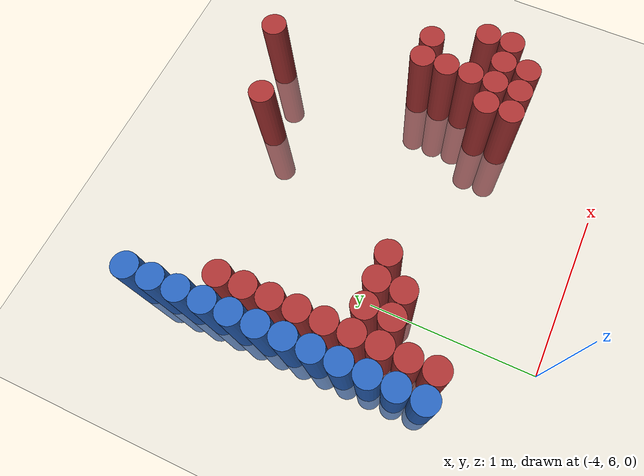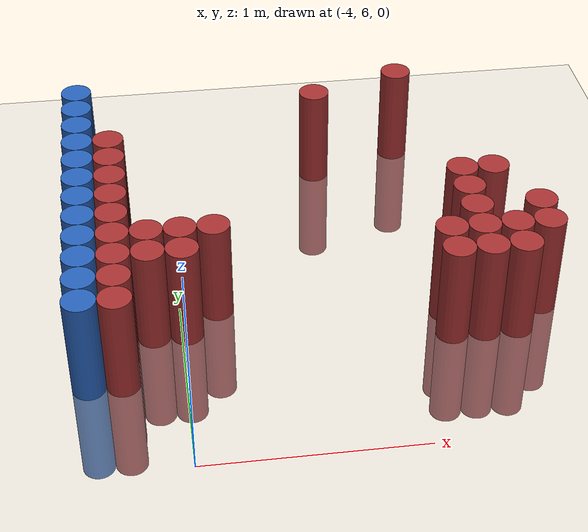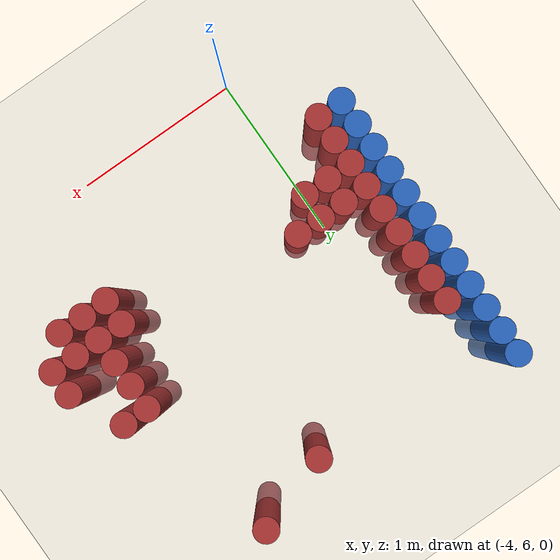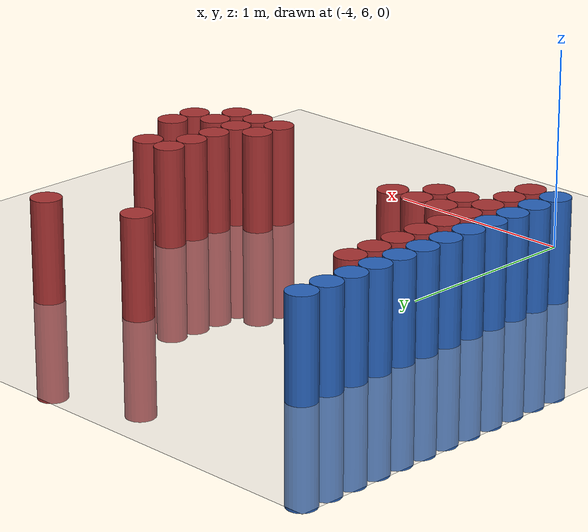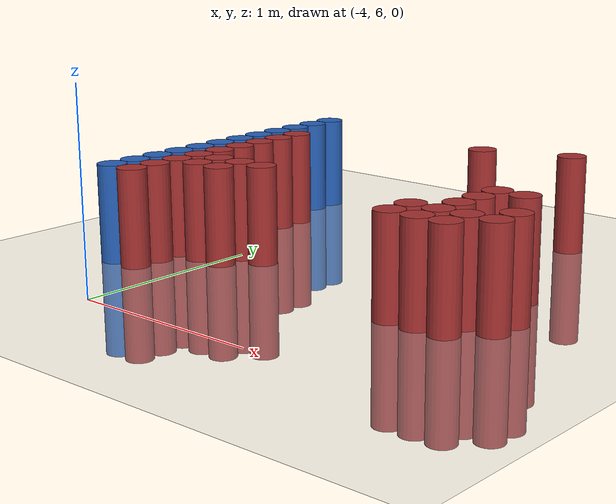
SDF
<sdf version="1.6">
 <world name="default">
  <model name="ground_plane">
   <static>1</static>
   <link name="link">
    <collision name="collision">
     <geometry><plane><normal>0 0 1</normal><size>100 100</size></plane></geometry>
     <surface><friction><ode><mu>100</mu><mu2>50</mu2></ode></friction></surface>
    </collision>
    <visual name="visual">
     <cast_shadows>0</cast_shadows>
     <geometry><plane><normal>0 0 1</normal><size>100 100</size></plane></geometry>
     <material>
      <script><uri>file://media/materials/scripts/gazebo.material</uri><name>Gazebo/Grey</name></script>
     </material>
    </visual>
   </link>
  </model>
  <model name="unit_cylinder_105">
   <static>1</static>
   <pose>-4.425000 6.525000 0.000000 0.000000 0.000000 0.000000</pose>
   <link name="link">
    <inertial>
     <mass>1</mass>
     <inertia><ixx>0.145833</ixx><ixy>0</ixy><ixz>0</ixz><iyy>0.145833</iyy><iyz>0</iyz><izz>0.125</izz></inertia>
    </inertial>
    <collision name="collision">
     <geometry><cylinder><radius>0.075000</radius><length>1</length></cylinder></geometry>
    </collision>
    <visual name="visual">
     <geometry><cylinder><radius>0.075000</radius><length>1</length></cylinder></geometry>
     <material>
      <ambient>0.152000 0.379000 0.720000 1</ambient>
      <diffuse>0.152000 0.379000 0.720000 1</diffuse>
     </material>
     <material>
      <script><name>Gazebo/Grey</name><uri>file://media/materials/scripts/gazebo.material</uri></script>
     </material>
    </visual>
    <sensor name="sensor_contact" type="contact"><contact><collision>collision</collision></contact></sensor>
   </link>
   <plugin filename="gz-sim-touchplugin-system" name="gz::sim::systems::TouchPlugin">
    <target>robot</target>
    <namespace>robot</namespace>
    <time>0.001</time>
    <enabled>true</enabled>
   </plugin>
  </model>
  <model name="unit_cylinder_106">
   <static>1</static>
   <pose>-4.425000 6.675000 0.000000 0.000000 0.000000 0.000000</pose>
   <link name="link">
    <inertial>
     <mass>1</mass>
     <inertia><ixx>0.145833</ixx><ixy>0</ixy><ixz>0</ixz><iyy>0.145833</iyy><iyz>0</iyz><izz>0.125</izz></inertia>
    </inertial>
    <collision name="collision">
     <geometry><cylinder><radius>0.075000</radius><length>1</length></cylinder></geometry>
    </collision>
    <visual name="visual">
     <geometry><cylinder><radius>0.075000</radius><length>1</length></cylinder></geometry>
     <material>
      <ambient>0.152000 0.379000 0.720000 1</ambient>
      <diffuse>0.152000 0.379000 0.720000 1</diffuse>
     </material>
     <material>
      <script><name>Gazebo/Grey</name><uri>file://media/materials/scripts/gazebo.material</uri></script>
     </material>
    </visual>
    <sensor name="sensor_contact" type="contact"><contact><collision>collision</collision></contact></sensor>
   </link>
   <plugin filename="gz-sim-touchplugin-system" name="gz::sim::systems::TouchPlugin">
    <target>robot</target>
    <namespace>robot</namespace>
    <time>0.001</time>
    <enabled>true</enabled>
   </plugin>
  </model>
  <model name="unit_cylinder_107">
   <static>1</static>
   <pose>-4.425000 6.825000 0.000000 0.000000 0.000000 0.000000</pose>
   <link name="link">
    <inertial>
     <mass>1</mass>
     <inertia><ixx>0.145833</ixx><ixy>0</ixy><ixz>0</ixz><iyy>0.145833</iyy><iyz>0</iyz><izz>0.125</izz></inertia>
    </inertial>
    <collision name="collision">
     <geometry><cylinder><radius>0.075000</radius><length>1</length></cylinder></geometry>
    </collision>
    <visual name="visual">
     <geometry><cylinder><radius>0.075000</radius><length>1</length></cylinder></geometry>
     <material>
      <ambient>0.152000 0.379000 0.720000 1</ambient>
      <diffuse>0.152000 0.379000 0.720000 1</diffuse>
     </material>
     <material>
      <script><name>Gazebo/Grey</name><uri>file://media/materials/scripts/gazebo.material</uri></script>
     </material>
    </visual>
    <sensor name="sensor_contact" type="contact"><contact><collision>collision</collision></contact></sensor>
   </link>
   <plugin filename="gz-sim-touchplugin-system" name="gz::sim::systems::TouchPlugin">
    <target>robot</target>
    <namespace>robot</namespace>
    <time>0.001</time>
    <enabled>true</enabled>
   </plugin>
  </model>
  <model name="unit_cylinder_108">
   <static>1</static>
   <pose>-4.425000 6.975000 0.000000 0.000000 0.000000 0.000000</pose>
   <link name="link">
    <inertial>
     <mass>1</mass>
     <inertia><ixx>0.145833</ixx><ixy>0</ixy><ixz>0</ixz><iyy>0.145833</iyy><iyz>0</iyz><izz>0.125</izz></inertia>
    </inertial>
    <collision name="collision">
     <geometry><cylinder><radius>0.075000</radius><length>1</length></cylinder></geometry>
    </collision>
    <visual name="visual">
     <geometry><cylinder><radius>0.075000</radius><length>1</length></cylinder></geometry>
     <material>
      <ambient>0.152000 0.379000 0.720000 1</ambient>
      <diffuse>0.152000 0.379000 0.720000 1</diffuse>
     </material>
     <material>
      <script><name>Gazebo/Grey</name><uri>file://media/materials/scripts/gazebo.material</uri></script>
     </material>
    </visual>
    <sensor name="sensor_contact" type="contact"><contact><collision>collision</collision></contact></sensor>
   </link>
   <plugin filename="gz-sim-touchplugin-system" name="gz::sim::systems::TouchPlugin">
    <target>robot</target>
    <namespace>robot</namespace>
    <time>0.001</time>
    <enabled>true</enabled>
   </plugin>
  </model>
  <model name="unit_cylinder_109">
   <static>1</static>
   <pose>-4.425000 7.125000 0.000000 0.000000 0.000000 0.000000</pose>
   <link name="link">
    <inertial>
     <mass>1</mass>
     <inertia><ixx>0.145833</ixx><ixy>0</ixy><ixz>0</ixz><iyy>0.145833</iyy><iyz>0</iyz><izz>0.125</izz></inertia>
    </inertial>
    <collision name="collision">
     <geometry><cylinder><radius>0.075000</radius><length>1</length></cylinder></geometry>
    </collision>
    <visual name="visual">
     <geometry><cylinder><radius>0.075000</radius><length>1</length></cylinder></geometry>
     <material>
      <ambient>0.152000 0.379000 0.720000 1</ambient>
      <diffuse>0.152000 0.379000 0.720000 1</diffuse>
     </material>
     <material>
      <script><name>Gazebo/Grey</name><uri>file://media/materials/scripts/gazebo.material</uri></script>
     </material>
    </visual>
    <sensor name="sensor_contact" type="contact"><contact><collision>collision</collision></contact></sensor>
   </link>
   <plugin filename="gz-sim-touchplugin-system" name="gz::sim::systems::TouchPlugin">
    <target>robot</target>
    <namespace>robot</namespace>
    <time>0.001</time>
    <enabled>true</enabled>
   </plugin>
  </model>
  <model name="unit_cylinder_110">
   <static>1</static>
   <pose>-4.425000 7.275000 0.000000 0.000000 0.000000 0.000000</pose>
   <link name="link">
    <inertial>
     <mass>1</mass>
     <inertia><ixx>0.145833</ixx><ixy>0</ixy><ixz>0</ixz><iyy>0.145833</iyy><iyz>0</iyz><izz>0.125</izz></inertia>
    </inertial>
    <collision name="collision">
     <geometry><cylinder><radius>0.075000</radius><length>1</length></cylinder></geometry>
    </collision>
    <visual name="visual">
     <geometry><cylinder><radius>0.075000</radius><length>1</length></cylinder></geometry>
     <material>
      <ambient>0.152000 0.379000 0.720000 1</ambient>
      <diffuse>0.152000 0.379000 0.720000 1</diffuse>
     </material>
     <material>
      <script><name>Gazebo/Grey</name><uri>file://media/materials/scripts/gazebo.material</uri></script>
     </material>
    </visual>
    <sensor name="sensor_contact" type="contact"><contact><collision>collision</collision></contact></sensor>
   </link>
   <plugin filename="gz-sim-touchplugin-system" name="gz::sim::systems::TouchPlugin">
    <target>robot</target>
    <namespace>robot</namespace>
    <time>0.001</time>
    <enabled>true</enabled>
   </plugin>
  </model>
  <model name="unit_cylinder_111">
   <static>1</static>
   <pose>-4.425000 7.425000 0.000000 0.000000 0.000000 0.000000</pose>
   <link name="link">
    <inertial>
     <mass>1</mass>
     <inertia><ixx>0.145833</ixx><ixy>0</ixy><ixz>0</ixz><iyy>0.145833</iyy><iyz>0</iyz><izz>0.125</izz></inertia>
    </inertial>
    <collision name="collision">
     <geometry><cylinder><radius>0.075000</radius><length>1</length></cylinder></geometry>
    </collision>
    <visual name="visual">
     <geometry><cylinder><radius>0.075000</radius><length>1</length></cylinder></geometry>
     <material>
      <ambient>0.152000 0.379000 0.720000 1</ambient>
      <diffuse>0.152000 0.379000 0.720000 1</diffuse>
     </material>
     <material>
      <script><name>Gazebo/Grey</name><uri>file://media/materials/scripts/gazebo.material</uri></script>
     </material>
    </visual>
    <sensor name="sensor_contact" type="contact"><contact><collision>collision</collision></contact></sensor>
   </link>
   <plugin filename="gz-sim-touchplugin-system" name="gz::sim::systems::TouchPlugin">
    <target>robot</target>
    <namespace>robot</namespace>
    <time>0.001</time>
    <enabled>true</enabled>
   </plugin>
  </model>
  <model name="unit_cylinder_112">
   <static>1</static>
   <pose>-4.425000 7.575000 0.000000 0.000000 0.000000 0.000000</pose>
   <link name="link">
    <inertial>
     <mass>1</mass>
     <inertia><ixx>0.145833</ixx><ixy>0</ixy><ixz>0</ixz><iyy>0.145833</iyy><iyz>0</iyz><izz>0.125</izz></inertia>
    </inertial>
    <collision name="collision">
     <geometry><cylinder><radius>0.075000</radius><length>1</length></cylinder></geometry>
    </collision>
    <visual name="visual">
     <geometry><cylinder><radius>0.075000</radius><length>1</length></cylinder></geometry>
     <material>
      <ambient>0.152000 0.379000 0.720000 1</ambient>
      <diffuse>0.152000 0.379000 0.720000 1</diffuse>
     </material>
     <material>
      <script><name>Gazebo/Grey</name><uri>file://media/materials/scripts/gazebo.material</uri></script>
     </material>
    </visual>
    <sensor name="sensor_contact" type="contact"><contact><collision>collision</collision></contact></sensor>
   </link>
   <plugin filename="gz-sim-touchplugin-system" name="gz::sim::systems::TouchPlugin">
    <target>robot</target>
    <namespace>robot</namespace>
    <time>0.001</time>
    <enabled>true</enabled>
   </plugin>
  </model>
  <model name="unit_cylinder_113">
   <static>1</static>
   <pose>-4.425000 7.725000 0.000000 0.000000 0.000000 0.000000</pose>
   <link name="link">
    <inertial>
     <mass>1</mass>
     <inertia><ixx>0.145833</ixx><ixy>0</ixy><ixz>0</ixz><iyy>0.145833</iyy><iyz>0</iyz><izz>0.125</izz></inertia>
    </inertial>
    <collision name="collision">
     <geometry><cylinder><radius>0.075000</radius><length>1</length></cylinder></geometry>
    </collision>
    <visual name="visual">
     <geometry><cylinder><radius>0.075000</radius><length>1</length></cylinder></geometry>
     <material>
      <ambient>0.152000 0.379000 0.720000 1</ambient>
      <diffuse>0.152000 0.379000 0.720000 1</diffuse>
     </material>
     <material>
      <script><name>Gazebo/Grey</name><uri>file://media/materials/scripts/gazebo.material</uri></script>
     </material>
    </visual>
    <sensor name="sensor_contact" type="contact"><contact><collision>collision</collision></contact></sensor>
   </link>
   <plugin filename="gz-sim-touchplugin-system" name="gz::sim::systems::TouchPlugin">
    <target>robot</target>
    <namespace>robot</namespace>
    <time>0.001</time>
    <enabled>true</enabled>
   </plugin>
  </model>
  <model name="unit_cylinder_114">
   <static>1</static>
   <pose>-4.425000 7.875000 0.000000 0.000000 0.000000 0.000000</pose>
   <link name="link">
    <inertial>
     <mass>1</mass>
     <inertia><ixx>0.145833</ixx><ixy>0</ixy><ixz>0</ixz><iyy>0.145833</iyy><iyz>0</iyz><izz>0.125</izz></inertia>
    </inertial>
    <collision name="collision">
     <geometry><cylinder><radius>0.075000</radius><length>1</length></cylinder></geometry>
    </collision>
    <visual name="visual">
     <geometry><cylinder><radius>0.075000</radius><length>1</length></cylinder></geometry>
     <material>
      <ambient>0.152000 0.379000 0.720000 1</ambient>
      <diffuse>0.152000 0.379000 0.720000 1</diffuse>
     </material>
     <material>
      <script><name>Gazebo/Grey</name><uri>file://media/materials/scripts/gazebo.material</uri></script>
     </material>
    </visual>
    <sensor name="sensor_contact" type="contact"><contact><collision>collision</collision></contact></sensor>
   </link>
   <plugin filename="gz-sim-touchplugin-system" name="gz::sim::systems::TouchPlugin">
    <target>robot</target>
    <namespace>robot</namespace>
    <time>0.001</time>
    <enabled>true</enabled>
   </plugin>
  </model>
  <model name="unit_cylinder_115">
   <static>1</static>
   <pose>-4.425000 8.025000 0.000000 0.000000 0.000000 0.000000</pose>
   <link name="link">
    <inertial>
     <mass>1</mass>
     <inertia><ixx>0.145833</ixx><ixy>0</ixy><ixz>0</ixz><iyy>0.145833</iyy><iyz>0</iyz><izz>0.125</izz></inertia>
    </inertial>
    <collision name="collision">
     <geometry><cylinder><radius>0.075000</radius><length>1</length></cylinder></geometry>
    </collision>
    <visual name="visual">
     <geometry><cylinder><radius>0.075000</radius><length>1</length></cylinder></geometry>
     <material>
      <ambient>0.152000 0.379000 0.720000 1</ambient>
      <diffuse>0.152000 0.379000 0.720000 1</diffuse>
     </material>
     <material>
      <script><name>Gazebo/Grey</name><uri>file://media/materials/scripts/gazebo.material</uri></script>
     </material>
    </visual>
    <sensor name="sensor_contact" type="contact"><contact><collision>collision</collision></contact></sensor>
   </link>
   <plugin filename="gz-sim-touchplugin-system" name="gz::sim::systems::TouchPlugin">
    <target>robot</target>
    <namespace>robot</namespace>
    <time>0.001</time>
    <enabled>true</enabled>
   </plugin>
  </model>
  <model name="unit_cylinder_116">
   <static>1</static>
   <pose>-4.425000 8.175000 0.000000 0.000000 0.000000 0.000000</pose>
   <link name="link">
    <inertial>
     <mass>1</mass>
     <inertia><ixx>0.145833</ixx><ixy>0</ixy><ixz>0</ixz><iyy>0.145833</iyy><iyz>0</iyz><izz>0.125</izz></inertia>
    </inertial>
    <collision name="collision">
     <geometry><cylinder><radius>0.075000</radius><length>1</length></cylinder></geometry>
    </collision>
    <visual name="visual">
     <geometry><cylinder><radius>0.075000</radius><length>1</length></cylinder></geometry>
     <material>
      <ambient>0.152000 0.379000 0.720000 1</ambient>
      <diffuse>0.152000 0.379000 0.720000 1</diffuse>
     </material>
     <material>
      <script><name>Gazebo/Grey</name><uri>file://media/materials/scripts/gazebo.material</uri></script>
     </material>
    </visual>
    <sensor name="sensor_contact" type="contact"><contact><collision>collision</collision></contact></sensor>
   </link>
   <plugin filename="gz-sim-touchplugin-system" name="gz::sim::systems::TouchPlugin">
    <target>robot</target>
    <namespace>robot</namespace>
    <time>0.001</time>
    <enabled>true</enabled>
   </plugin>
  </model>
  <model name="unit_cylinder_132">
   <static>1</static>
   <pose>-4.275000 6.525000 0.000000 0.000000 0.000000 0.000000</pose>
   <link name="link">
    <inertial>
     <mass>1</mass>
     <inertia><ixx>0.145833</ixx><ixy>0</ixy><ixz>0</ixz><iyy>0.145833</iyy><iyz>0</iyz><izz>0.125</izz></inertia>
    </inertial>
    <collision name="collision">
     <geometry><cylinder><radius>0.075000</radius><length>1</length></cylinder></geometry>
    </collision>
    <visual name="visual">
     <geometry><cylinder><radius>0.075000</radius><length>1</length></cylinder></geometry>
     <material>
      <ambient>0.648000 0.192000 0.192000 1</ambient>
      <diffuse>0.648000 0.192000 0.192000 1</diffuse>
     </material>
     <material>
      <script><name>Gazebo/Grey</name><uri>file://media/materials/scripts/gazebo.material</uri></script>
     </material>
    </visual>
    <sensor name="sensor_contact" type="contact"><contact><collision>collision</collision></contact></sensor>
   </link>
   <plugin filename="gz-sim-touchplugin-system" name="gz::sim::systems::TouchPlugin">
    <target>robot</target>
    <namespace>robot</namespace>
    <time>0.001</time>
    <enabled>true</enabled>
   </plugin>
  </model>
  <model name="unit_cylinder_133">
   <static>1</static>
   <pose>-4.275000 6.675000 0.000000 0.000000 0.000000 0.000000</pose>
   <link name="link">
    <inertial>
     <mass>1</mass>
     <inertia><ixx>0.145833</ixx><ixy>0</ixy><ixz>0</ixz><iyy>0.145833</iyy><iyz>0</iyz><izz>0.125</izz></inertia>
    </inertial>
    <collision name="collision">
     <geometry><cylinder><radius>0.075000</radius><length>1</length></cylinder></geometry>
    </collision>
    <visual name="visual">
     <geometry><cylinder><radius>0.075000</radius><length>1</length></cylinder></geometry>
     <material>
      <ambient>0.648000 0.192000 0.192000 1</ambient>
      <diffuse>0.648000 0.192000 0.192000 1</diffuse>
     </material>
     <material>
      <script><name>Gazebo/Grey</name><uri>file://media/materials/scripts/gazebo.material</uri></script>
     </material>
    </visual>
    <sensor name="sensor_contact" type="contact"><contact><collision>collision</collision></contact></sensor>
   </link>
   <plugin filename="gz-sim-touchplugin-system" name="gz::sim::systems::TouchPlugin">
    <target>robot</target>
    <namespace>robot</namespace>
    <time>0.001</time>
    <enabled>true</enabled>
   </plugin>
  </model>
  <model name="unit_cylinder_134">
   <static>1</static>
   <pose>-4.275000 6.825000 0.000000 0.000000 0.000000 0.000000</pose>
   <link name="link">
    <inertial>
     <mass>1</mass>
     <inertia><ixx>0.145833</ixx><ixy>0</ixy><ixz>0</ixz><iyy>0.145833</iyy><iyz>0</iyz><izz>0.125</izz></inertia>
    </inertial>
    <collision name="collision">
     <geometry><cylinder><radius>0.075000</radius><length>1</length></cylinder></geometry>
    </collision>
    <visual name="visual">
     <geometry><cylinder><radius>0.075000</radius><length>1</length></cylinder></geometry>
     <material>
      <ambient>0.648000 0.192000 0.192000 1</ambient>
      <diffuse>0.648000 0.192000 0.192000 1</diffuse>
     </material>
     <material>
      <script><name>Gazebo/Grey</name><uri>file://media/materials/scripts/gazebo.material</uri></script>
     </material>
    </visual>
    <sensor name="sensor_contact" type="contact"><contact><collision>collision</collision></contact></sensor>
   </link>
   <plugin filename="gz-sim-touchplugin-system" name="gz::sim::systems::TouchPlugin">
    <target>robot</target>
    <namespace>robot</namespace>
    <time>0.001</time>
    <enabled>true</enabled>
   </plugin>
  </model>
  <model name="unit_cylinder_135">
   <static>1</static>
   <pose>-4.275000 6.975000 0.000000 0.000000 0.000000 0.000000</pose>
   <link name="link">
    <inertial>
     <mass>1</mass>
     <inertia><ixx>0.145833</ixx><ixy>0</ixy><ixz>0</ixz><iyy>0.145833</iyy><iyz>0</iyz><izz>0.125</izz></inertia>
    </inertial>
    <collision name="collision">
     <geometry><cylinder><radius>0.075000</radius><length>1</length></cylinder></geometry>
    </collision>
    <visual name="visual">
     <geometry><cylinder><radius>0.075000</radius><length>1</length></cylinder></geometry>
     <material>
      <ambient>0.648000 0.192000 0.192000 1</ambient>
      <diffuse>0.648000 0.192000 0.192000 1</diffuse>
     </material>
     <material>
      <script><name>Gazebo/Grey</name><uri>file://media/materials/scripts/gazebo.material</uri></script>
     </material>
    </visual>
    <sensor name="sensor_contact" type="contact"><contact><collision>collision</collision></contact></sensor>
   </link>
   <plugin filename="gz-sim-touchplugin-system" name="gz::sim::systems::TouchPlugin">
    <target>robot</target>
    <namespace>robot</namespace>
    <time>0.001</time>
    <enabled>true</enabled>
   </plugin>
  </model>
  <model name="unit_cylinder_136">
   <static>1</static>
   <pose>-4.275000 7.125000 0.000000 0.000000 0.000000 0.000000</pose>
   <link name="link">
    <inertial>
     <mass>1</mass>
     <inertia><ixx>0.145833</ixx><ixy>0</ixy><ixz>0</ixz><iyy>0.145833</iyy><iyz>0</iyz><izz>0.125</izz></inertia>
    </inertial>
    <collision name="collision">
     <geometry><cylinder><radius>0.075000</radius><length>1</length></cylinder></geometry>
    </collision>
    <visual name="visual">
     <geometry><cylinder><radius>0.075000</radius><length>1</length></cylinder></geometry>
     <material>
      <ambient>0.648000 0.192000 0.192000 1</ambient>
      <diffuse>0.648000 0.192000 0.192000 1</diffuse>
     </material>
     <material>
      <script><name>Gazebo/Grey</name><uri>file://media/materials/scripts/gazebo.material</uri></script>
     </material>
    </visual>
    <sensor name="sensor_contact" type="contact"><contact><collision>collision</collision></contact></sensor>
   </link>
   <plugin filename="gz-sim-touchplugin-system" name="gz::sim::systems::TouchPlugin">
    <target>robot</target>
    <namespace>robot</namespace>
    <time>0.001</time>
    <enabled>true</enabled>
   </plugin>
  </model>
  <model name="unit_cylinder_137">
   <static>1</static>
   <pose>-4.275000 7.275000 0.000000 0.000000 0.000000 0.000000</pose>
   <link name="link">
    <inertial>
     <mass>1</mass>
     <inertia><ixx>0.145833</ixx><ixy>0</ixy><ixz>0</ixz><iyy>0.145833</iyy><iyz>0</iyz><izz>0.125</izz></inertia>
    </inertial>
    <collision name="collision">
     <geometry><cylinder><radius>0.075000</radius><length>1</length></cylinder></geometry>
    </collision>
    <visual name="visual">
     <geometry><cylinder><radius>0.075000</radius><length>1</length></cylinder></geometry>
     <material>
      <ambient>0.648000 0.192000 0.192000 1</ambient>
      <diffuse>0.648000 0.192000 0.192000 1</diffuse>
     </material>
     <material>
      <script><name>Gazebo/Grey</name><uri>file://media/materials/scripts/gazebo.material</uri></script>
     </material>
    </visual>
    <sensor name="sensor_contact" type="contact"><contact><collision>collision</collision></contact></sensor>
   </link>
   <plugin filename="gz-sim-touchplugin-system" name="gz::sim::systems::TouchPlugin">
    <target>robot</target>
    <namespace>robot</namespace>
    <time>0.001</time>
    <enabled>true</enabled>
   </plugin>
  </model>
  <model name="unit_cylinder_138">
   <static>1</static>
   <pose>-4.275000 7.425000 0.000000 0.000000 0.000000 0.000000</pose>
   <link name="link">
    <inertial>
     <mass>1</mass>
     <inertia><ixx>0.145833</ixx><ixy>0</ixy><ixz>0</ixz><iyy>0.145833</iyy><iyz>0</iyz><izz>0.125</izz></inertia>
    </inertial>
    <collision name="collision">
     <geometry><cylinder><radius>0.075000</radius><length>1</length></cylinder></geometry>
    </collision>
    <visual name="visual">
     <geometry><cylinder><radius>0.075000</radius><length>1</length></cylinder></geometry>
     <material>
      <ambient>0.648000 0.192000 0.192000 1</ambient>
      <diffuse>0.648000 0.192000 0.192000 1</diffuse>
     </material>
     <material>
      <script><name>Gazebo/Grey</name><uri>file://media/materials/scripts/gazebo.material</uri></script>
     </material>
    </visual>
    <sensor name="sensor_contact" type="contact"><contact><collision>collision</collision></contact></sensor>
   </link>
   <plugin filename="gz-sim-touchplugin-system" name="gz::sim::systems::TouchPlugin">
    <target>robot</target>
    <namespace>robot</namespace>
    <time>0.001</time>
    <enabled>true</enabled>
   </plugin>
  </model>
  <model name="unit_cylinder_139">
   <static>1</static>
   <pose>-4.275000 7.575000 0.000000 0.000000 0.000000 0.000000</pose>
   <link name="link">
    <inertial>
     <mass>1</mass>
     <inertia><ixx>0.145833</ixx><ixy>0</ixy><ixz>0</ixz><iyy>0.145833</iyy><iyz>0</iyz><izz>0.125</izz></inertia>
    </inertial>
    <collision name="collision">
     <geometry><cylinder><radius>0.075000</radius><length>1</length></cylinder></geometry>
    </collision>
    <visual name="visual">
     <geometry><cylinder><radius>0.075000</radius><length>1</length></cylinder></geometry>
     <material>
      <ambient>0.648000 0.192000 0.192000 1</ambient>
      <diffuse>0.648000 0.192000 0.192000 1</diffuse>
     </material>
     <material>
      <script><name>Gazebo/Grey</name><uri>file://media/materials/scripts/gazebo.material</uri></script>
     </material>
    </visual>
    <sensor name="sensor_contact" type="contact"><contact><collision>collision</collision></contact></sensor>
   </link>
   <plugin filename="gz-sim-touchplugin-system" name="gz::sim::systems::TouchPlugin">
    <target>robot</target>
    <namespace>robot</namespace>
    <time>0.001</time>
    <enabled>true</enabled>
   </plugin>
  </model>
  <model name="unit_cylinder_140">
   <static>1</static>
   <pose>-4.275000 7.725000 0.000000 0.000000 0.000000 0.000000</pose>
   <link name="link">
    <inertial>
     <mass>1</mass>
     <inertia><ixx>0.145833</ixx><ixy>0</ixy><ixz>0</ixz><iyy>0.145833</iyy><iyz>0</iyz><izz>0.125</izz></inertia>
    </inertial>
    <collision name="collision">
     <geometry><cylinder><radius>0.075000</radius><length>1</length></cylinder></geometry>
    </collision>
    <visual name="visual">
     <geometry><cylinder><radius>0.075000</radius><length>1</length></cylinder></geometry>
     <material>
      <ambient>0.648000 0.192000 0.192000 1</ambient>
      <diffuse>0.648000 0.192000 0.192000 1</diffuse>
     </material>
     <material>
      <script><name>Gazebo/Grey</name><uri>file://media/materials/scripts/gazebo.material</uri></script>
     </material>
    </visual>
    <sensor name="sensor_contact" type="contact"><contact><collision>collision</collision></contact></sensor>
   </link>
   <plugin filename="gz-sim-touchplugin-system" name="gz::sim::systems::TouchPlugin">
    <target>robot</target>
    <namespace>robot</namespace>
    <time>0.001</time>
    <enabled>true</enabled>
   </plugin>
  </model>
  <model name="unit_cylinder_155">
   <static>1</static>
   <pose>-4.125000 6.825000 0.000000 0.000000 0.000000 0.000000</pose>
   <link name="link">
    <inertial>
     <mass>1</mass>
     <inertia><ixx>0.145833</ixx><ixy>0</ixy><ixz>0</ixz><iyy>0.145833</iyy><iyz>0</iyz><izz>0.125</izz></inertia>
    </inertial>
    <collision name="collision">
     <geometry><cylinder><radius>0.075000</radius><length>1</length></cylinder></geometry>
    </collision>
    <visual name="visual">
     <geometry><cylinder><radius>0.075000</radius><length>1</length></cylinder></geometry>
     <material>
      <ambient>0.648000 0.192000 0.192000 1</ambient>
      <diffuse>0.648000 0.192000 0.192000 1</diffuse>
     </material>
     <material>
      <script><name>Gazebo/Grey</name><uri>file://media/materials/scripts/gazebo.material</uri></script>
     </material>
    </visual>
    <sensor name="sensor_contact" type="contact"><contact><collision>collision</collision></contact></sensor>
   </link>
   <plugin filename="gz-sim-touchplugin-system" name="gz::sim::systems::TouchPlugin">
    <target>robot</target>
    <namespace>robot</namespace>
    <time>0.001</time>
    <enabled>true</enabled>
   </plugin>
  </model>
  <model name="unit_cylinder_156">
   <static>1</static>
   <pose>-4.125000 6.975000 0.000000 0.000000 0.000000 0.000000</pose>
   <link name="link">
    <inertial>
     <mass>1</mass>
     <inertia><ixx>0.145833</ixx><ixy>0</ixy><ixz>0</ixz><iyy>0.145833</iyy><iyz>0</iyz><izz>0.125</izz></inertia>
    </inertial>
    <collision name="collision">
     <geometry><cylinder><radius>0.075000</radius><length>1</length></cylinder></geometry>
    </collision>
    <visual name="visual">
     <geometry><cylinder><radius>0.075000</radius><length>1</length></cylinder></geometry>
     <material>
      <ambient>0.648000 0.192000 0.192000 1</ambient>
      <diffuse>0.648000 0.192000 0.192000 1</diffuse>
     </material>
     <material>
      <script><name>Gazebo/Grey</name><uri>file://media/materials/scripts/gazebo.material</uri></script>
     </material>
    </visual>
    <sensor name="sensor_contact" type="contact"><contact><collision>collision</collision></contact></sensor>
   </link>
   <plugin filename="gz-sim-touchplugin-system" name="gz::sim::systems::TouchPlugin">
    <target>robot</target>
    <namespace>robot</namespace>
    <time>0.001</time>
    <enabled>true</enabled>
   </plugin>
  </model>
  <model name="unit_cylinder_162">
   <static>1</static>
   <pose>-3.975000 6.825000 0.000000 0.000000 0.000000 0.000000</pose>
   <link name="link">
    <inertial>
     <mass>1</mass>
     <inertia><ixx>0.145833</ixx><ixy>0</ixy><ixz>0</ixz><iyy>0.145833</iyy><iyz>0</iyz><izz>0.125</izz></inertia>
    </inertial>
    <collision name="collision">
     <geometry><cylinder><radius>0.075000</radius><length>1</length></cylinder></geometry>
    </collision>
    <visual name="visual">
     <geometry><cylinder><radius>0.075000</radius><length>1</length></cylinder></geometry>
     <material>
      <ambient>0.648000 0.192000 0.192000 1</ambient>
      <diffuse>0.648000 0.192000 0.192000 1</diffuse>
     </material>
     <material>
      <script><name>Gazebo/Grey</name><uri>file://media/materials/scripts/gazebo.material</uri></script>
     </material>
    </visual>
    <sensor name="sensor_contact" type="contact"><contact><collision>collision</collision></contact></sensor>
   </link>
   <plugin filename="gz-sim-touchplugin-system" name="gz::sim::systems::TouchPlugin">
    <target>robot</target>
    <namespace>robot</namespace>
    <time>0.001</time>
    <enabled>true</enabled>
   </plugin>
  </model>
  <model name="unit_cylinder_163">
   <static>1</static>
   <pose>-3.975000 6.975000 0.000000 0.000000 0.000000 0.000000</pose>
   <link name="link">
    <inertial>
     <mass>1</mass>
     <inertia><ixx>0.145833</ixx><ixy>0</ixy><ixz>0</ixz><iyy>0.145833</iyy><iyz>0</iyz><izz>0.125</izz></inertia>
    </inertial>
    <collision name="collision">
     <geometry><cylinder><radius>0.075000</radius><length>1</length></cylinder></geometry>
    </collision>
    <visual name="visual">
     <geometry><cylinder><radius>0.075000</radius><length>1</length></cylinder></geometry>
     <material>
      <ambient>0.648000 0.192000 0.192000 1</ambient>
      <diffuse>0.648000 0.192000 0.192000 1</diffuse>
     </material>
     <material>
      <script><name>Gazebo/Grey</name><uri>file://media/materials/scripts/gazebo.material</uri></script>
     </material>
    </visual>
    <sensor name="sensor_contact" type="contact"><contact><collision>collision</collision></contact></sensor>
   </link>
   <plugin filename="gz-sim-touchplugin-system" name="gz::sim::systems::TouchPlugin">
    <target>robot</target>
    <namespace>robot</namespace>
    <time>0.001</time>
    <enabled>true</enabled>
   </plugin>
  </model>
  <model name="unit_cylinder_168">
   <static>1</static>
   <pose>-3.825000 6.975000 0.000000 0.000000 0.000000 0.000000</pose>
   <link name="link">
    <inertial>
     <mass>1</mass>
     <inertia><ixx>0.145833</ixx><ixy>0</ixy><ixz>0</ixz><iyy>0.145833</iyy><iyz>0</iyz><izz>0.125</izz></inertia>
    </inertial>
    <collision name="collision">
     <geometry><cylinder><radius>0.075000</radius><length>1</length></cylinder></geometry>
    </collision>
    <visual name="visual">
     <geometry><cylinder><radius>0.075000</radius><length>1</length></cylinder></geometry>
     <material>
      <ambient>0.648000 0.192000 0.192000 1</ambient>
      <diffuse>0.648000 0.192000 0.192000 1</diffuse>
     </material>
     <material>
      <script><name>Gazebo/Grey</name><uri>file://media/materials/scripts/gazebo.material</uri></script>
     </material>
    </visual>
    <sensor name="sensor_contact" type="contact"><contact><collision>collision</collision></contact></sensor>
   </link>
   <plugin filename="gz-sim-touchplugin-system" name="gz::sim::systems::TouchPlugin">
    <target>robot</target>
    <namespace>robot</namespace>
    <time>0.001</time>
    <enabled>true</enabled>
   </plugin>
  </model>
  <model name="unit_cylinder_169">
   <static>1</static>
   <pose>-3.225000 8.025000 0.000000 0.000000 0.000000 0.000000</pose>
   <link name="link">
    <inertial>
     <mass>1</mass>
     <inertia><ixx>0.145833</ixx><ixy>0</ixy><ixz>0</ixz><iyy>0.145833</iyy><iyz>0</iyz><izz>0.125</izz></inertia>
    </inertial>
    <collision name="collision">
     <geometry><cylinder><radius>0.075000</radius><length>1</length></cylinder></geometry>
    </collision>
    <visual name="visual">
     <geometry><cylinder><radius>0.075000</radius><length>1</length></cylinder></geometry>
     <material>
      <ambient>0.648000 0.192000 0.192000 1</ambient>
      <diffuse>0.648000 0.192000 0.192000 1</diffuse>
     </material>
     <material>
      <script><name>Gazebo/Grey</name><uri>file://media/materials/scripts/gazebo.material</uri></script>
     </material>
    </visual>
    <sensor name="sensor_contact" type="contact"><contact><collision>collision</collision></contact></sensor>
   </link>
   <plugin filename="gz-sim-touchplugin-system" name="gz::sim::systems::TouchPlugin">
    <target>robot</target>
    <namespace>robot</namespace>
    <time>0.001</time>
    <enabled>true</enabled>
   </plugin>
  </model>
  <model name="unit_cylinder_179">
   <static>1</static>
   <pose>-2.775000 6.675000 0.000000 0.000000 0.000000 0.000000</pose>
   <link name="link">
    <inertial>
     <mass>1</mass>
     <inertia><ixx>0.145833</ixx><ixy>0</ixy><ixz>0</ixz><iyy>0.145833</iyy><iyz>0</iyz><izz>0.125</izz></inertia>
    </inertial>
    <collision name="collision">
     <geometry><cylinder><radius>0.075000</radius><length>1</length></cylinder></geometry>
    </collision>
    <visual name="visual">
     <geometry><cylinder><radius>0.075000</radius><length>1</length></cylinder></geometry>
     <material>
      <ambient>0.648000 0.192000 0.192000 1</ambient>
      <diffuse>0.648000 0.192000 0.192000 1</diffuse>
     </material>
     <material>
      <script><name>Gazebo/Grey</name><uri>file://media/materials/scripts/gazebo.material</uri></script>
     </material>
    </visual>
    <sensor name="sensor_contact" type="contact"><contact><collision>collision</collision></contact></sensor>
   </link>
   <plugin filename="gz-sim-touchplugin-system" name="gz::sim::systems::TouchPlugin">
    <target>robot</target>
    <namespace>robot</namespace>
    <time>0.001</time>
    <enabled>true</enabled>
   </plugin>
  </model>
  <model name="unit_cylinder_180">
   <static>1</static>
   <pose>-2.775000 6.825000 0.000000 0.000000 0.000000 0.000000</pose>
   <link name="link">
    <inertial>
     <mass>1</mass>
     <inertia><ixx>0.145833</ixx><ixy>0</ixy><ixz>0</ixz><iyy>0.145833</iyy><iyz>0</iyz><izz>0.125</izz></inertia>
    </inertial>
    <collision name="collision">
     <geometry><cylinder><radius>0.075000</radius><length>1</length></cylinder></geometry>
    </collision>
    <visual name="visual">
     <geometry><cylinder><radius>0.075000</radius><length>1</length></cylinder></geometry>
     <material>
      <ambient>0.648000 0.192000 0.192000 1</ambient>
      <diffuse>0.648000 0.192000 0.192000 1</diffuse>
     </material>
     <material>
      <script><name>Gazebo/Grey</name><uri>file://media/materials/scripts/gazebo.material</uri></script>
     </material>
    </visual>
    <sensor name="sensor_contact" type="contact"><contact><collision>collision</collision></contact></sensor>
   </link>
   <plugin filename="gz-sim-touchplugin-system" name="gz::sim::systems::TouchPlugin">
    <target>robot</target>
    <namespace>robot</namespace>
    <time>0.001</time>
    <enabled>true</enabled>
   </plugin>
  </model>
  <model name="unit_cylinder_181">
   <static>1</static>
   <pose>-2.775000 8.175000 0.000000 0.000000 0.000000 0.000000</pose>
   <link name="link">
    <inertial>
     <mass>1</mass>
     <inertia><ixx>0.145833</ixx><ixy>0</ixy><ixz>0</ixz><iyy>0.145833</iyy><iyz>0</iyz><izz>0.125</izz></inertia>
    </inertial>
    <collision name="collision">
     <geometry><cylinder><radius>0.075000</radius><length>1</length></cylinder></geometry>
    </collision>
    <visual name="visual">
     <geometry><cylinder><radius>0.075000</radius><length>1</length></cylinder></geometry>
     <material>
      <ambient>0.648000 0.192000 0.192000 1</ambient>
      <diffuse>0.648000 0.192000 0.192000 1</diffuse>
     </material>
     <material>
      <script><name>Gazebo/Grey</name><uri>file://media/materials/scripts/gazebo.material</uri></script>
     </material>
    </visual>
    <sensor name="sensor_contact" type="contact"><contact><collision>collision</collision></contact></sensor>
   </link>
   <plugin filename="gz-sim-touchplugin-system" name="gz::sim::systems::TouchPlugin">
    <target>robot</target>
    <namespace>robot</namespace>
    <time>0.001</time>
    <enabled>true</enabled>
   </plugin>
  </model>
  <model name="unit_cylinder_188">
   <static>1</static>
   <pose>-2.625000 6.675000 0.000000 0.000000 0.000000 0.000000</pose>
   <link name="link">
    <inertial>
     <mass>1</mass>
     <inertia><ixx>0.145833</ixx><ixy>0</ixy><ixz>0</ixz><iyy>0.145833</iyy><iyz>0</iyz><izz>0.125</izz></inertia>
    </inertial>
    <collision name="collision">
     <geometry><cylinder><radius>0.075000</radius><length>1</length></cylinder></geometry>
    </collision>
    <visual name="visual">
     <geometry><cylinder><radius>0.075000</radius><length>1</length></cylinder></geometry>
     <material>
      <ambient>0.648000 0.192000 0.192000 1</ambient>
      <diffuse>0.648000 0.192000 0.192000 1</diffuse>
     </material>
     <material>
      <script><name>Gazebo/Grey</name><uri>file://media/materials/scripts/gazebo.material</uri></script>
     </material>
    </visual>
    <sensor name="sensor_contact" type="contact"><contact><collision>collision</collision></contact></sensor>
   </link>
   <plugin filename="gz-sim-touchplugin-system" name="gz::sim::systems::TouchPlugin">
    <target>robot</target>
    <namespace>robot</namespace>
    <time>0.001</time>
    <enabled>true</enabled>
   </plugin>
  </model>
  <model name="unit_cylinder_189">
   <static>1</static>
   <pose>-2.625000 6.825000 0.000000 0.000000 0.000000 0.000000</pose>
   <link name="link">
    <inertial>
     <mass>1</mass>
     <inertia><ixx>0.145833</ixx><ixy>0</ixy><ixz>0</ixz><iyy>0.145833</iyy><iyz>0</iyz><izz>0.125</izz></inertia>
    </inertial>
    <collision name="collision">
     <geometry><cylinder><radius>0.075000</radius><length>1</length></cylinder></geometry>
    </collision>
    <visual name="visual">
     <geometry><cylinder><radius>0.075000</radius><length>1</length></cylinder></geometry>
     <material>
      <ambient>0.648000 0.192000 0.192000 1</ambient>
      <diffuse>0.648000 0.192000 0.192000 1</diffuse>
     </material>
     <material>
      <script><name>Gazebo/Grey</name><uri>file://media/materials/scripts/gazebo.material</uri></script>
     </material>
    </visual>
    <sensor name="sensor_contact" type="contact"><contact><collision>collision</collision></contact></sensor>
   </link>
   <plugin filename="gz-sim-touchplugin-system" name="gz::sim::systems::TouchPlugin">
    <target>robot</target>
    <namespace>robot</namespace>
    <time>0.001</time>
    <enabled>true</enabled>
   </plugin>
  </model>
  <model name="unit_cylinder_190">
   <static>1</static>
   <pose>-2.625000 6.975000 0.000000 0.000000 0.000000 0.000000</pose>
   <link name="link">
    <inertial>
     <mass>1</mass>
     <inertia><ixx>0.145833</ixx><ixy>0</ixy><ixz>0</ixz><iyy>0.145833</iyy><iyz>0</iyz><izz>0.125</izz></inertia>
    </inertial>
    <collision name="collision">
     <geometry><cylinder><radius>0.075000</radius><length>1</length></cylinder></geometry>
    </collision>
    <visual name="visual">
     <geometry><cylinder><radius>0.075000</radius><length>1</length></cylinder></geometry>
     <material>
      <ambient>0.648000 0.192000 0.192000 1</ambient>
      <diffuse>0.648000 0.192000 0.192000 1</diffuse>
     </material>
     <material>
      <script><name>Gazebo/Grey</name><uri>file://media/materials/scripts/gazebo.material</uri></script>
     </material>
    </visual>
    <sensor name="sensor_contact" type="contact"><contact><collision>collision</collision></contact></sensor>
   </link>
   <plugin filename="gz-sim-touchplugin-system" name="gz::sim::systems::TouchPlugin">
    <target>robot</target>
    <namespace>robot</namespace>
    <time>0.001</time>
    <enabled>true</enabled>
   </plugin>
  </model>
  <model name="unit_cylinder_191">
   <static>1</static>
   <pose>-2.625000 7.125000 0.000000 0.000000 0.000000 0.000000</pose>
   <link name="link">
    <inertial>
     <mass>1</mass>
     <inertia><ixx>0.145833</ixx><ixy>0</ixy><ixz>0</ixz><iyy>0.145833</iyy><iyz>0</iyz><izz>0.125</izz></inertia>
    </inertial>
    <collision name="collision">
     <geometry><cylinder><radius>0.075000</radius><length>1</length></cylinder></geometry>
    </collision>
    <visual name="visual">
     <geometry><cylinder><radius>0.075000</radius><length>1</length></cylinder></geometry>
     <material>
      <ambient>0.648000 0.192000 0.192000 1</ambient>
      <diffuse>0.648000 0.192000 0.192000 1</diffuse>
     </material>
     <material>
      <script><name>Gazebo/Grey</name><uri>file://media/materials/scripts/gazebo.material</uri></script>
     </material>
    </visual>
    <sensor name="sensor_contact" type="contact"><contact><collision>collision</collision></contact></sensor>
   </link>
   <plugin filename="gz-sim-touchplugin-system" name="gz::sim::systems::TouchPlugin">
    <target>robot</target>
    <namespace>robot</namespace>
    <time>0.001</time>
    <enabled>true</enabled>
   </plugin>
  </model>
  <model name="unit_cylinder_192">
   <static>1</static>
   <pose>-2.625000 7.275000 0.000000 0.000000 0.000000 0.000000</pose>
   <link name="link">
    <inertial>
     <mass>1</mass>
     <inertia><ixx>0.145833</ixx><ixy>0</ixy><ixz>0</ixz><iyy>0.145833</iyy><iyz>0</iyz><izz>0.125</izz></inertia>
    </inertial>
    <collision name="collision">
     <geometry><cylinder><radius>0.075000</radius><length>1</length></cylinder></geometry>
    </collision>
    <visual name="visual">
     <geometry><cylinder><radius>0.075000</radius><length>1</length></cylinder></geometry>
     <material>
      <ambient>0.648000 0.192000 0.192000 1</ambient>
      <diffuse>0.648000 0.192000 0.192000 1</diffuse>
     </material>
     <material>
      <script><name>Gazebo/Grey</name><uri>file://media/materials/scripts/gazebo.material</uri></script>
     </material>
    </visual>
    <sensor name="sensor_contact" type="contact"><contact><collision>collision</collision></contact></sensor>
   </link>
   <plugin filename="gz-sim-touchplugin-system" name="gz::sim::systems::TouchPlugin">
    <target>robot</target>
    <namespace>robot</namespace>
    <time>0.001</time>
    <enabled>true</enabled>
   </plugin>
  </model>
  <model name="unit_cylinder_200">
   <static>1</static>
   <pose>-2.475000 6.675000 0.000000 0.000000 0.000000 0.000000</pose>
   <link name="link">
    <inertial>
     <mass>1</mass>
     <inertia><ixx>0.145833</ixx><ixy>0</ixy><ixz>0</ixz><iyy>0.145833</iyy><iyz>0</iyz><izz>0.125</izz></inertia>
    </inertial>
    <collision name="collision">
     <geometry><cylinder><radius>0.075000</radius><length>1</length></cylinder></geometry>
    </collision>
    <visual name="visual">
     <geometry><cylinder><radius>0.075000</radius><length>1</length></cylinder></geometry>
     <material>
      <ambient>0.648000 0.192000 0.192000 1</ambient>
      <diffuse>0.648000 0.192000 0.192000 1</diffuse>
     </material>
     <material>
      <script><name>Gazebo/Grey</name><uri>file://media/materials/scripts/gazebo.material</uri></script>
     </material>
    </visual>
    <sensor name="sensor_contact" type="contact"><contact><collision>collision</collision></contact></sensor>
   </link>
   <plugin filename="gz-sim-touchplugin-system" name="gz::sim::systems::TouchPlugin">
    <target>robot</target>
    <namespace>robot</namespace>
    <time>0.001</time>
    <enabled>true</enabled>
   </plugin>
  </model>
  <model name="unit_cylinder_201">
   <static>1</static>
   <pose>-2.475000 6.825000 0.000000 0.000000 0.000000 0.000000</pose>
   <link name="link">
    <inertial>
     <mass>1</mass>
     <inertia><ixx>0.145833</ixx><ixy>0</ixy><ixz>0</ixz><iyy>0.145833</iyy><iyz>0</iyz><izz>0.125</izz></inertia>
    </inertial>
    <collision name="collision">
     <geometry><cylinder><radius>0.075000</radius><length>1</length></cylinder></geometry>
    </collision>
    <visual name="visual">
     <geometry><cylinder><radius>0.075000</radius><length>1</length></cylinder></geometry>
     <material>
      <ambient>0.648000 0.192000 0.192000 1</ambient>
      <diffuse>0.648000 0.192000 0.192000 1</diffuse>
     </material>
     <material>
      <script><name>Gazebo/Grey</name><uri>file://media/materials/scripts/gazebo.material</uri></script>
     </material>
    </visual>
    <sensor name="sensor_contact" type="contact"><contact><collision>collision</collision></contact></sensor>
   </link>
   <plugin filename="gz-sim-touchplugin-system" name="gz::sim::systems::TouchPlugin">
    <target>robot</target>
    <namespace>robot</namespace>
    <time>0.001</time>
    <enabled>true</enabled>
   </plugin>
  </model>
  <model name="unit_cylinder_202">
   <static>1</static>
   <pose>-2.475000 7.275000 0.000000 0.000000 0.000000 0.000000</pose>
   <link name="link">
    <inertial>
     <mass>1</mass>
     <inertia><ixx>0.145833</ixx><ixy>0</ixy><ixz>0</ixz><iyy>0.145833</iyy><iyz>0</iyz><izz>0.125</izz></inertia>
    </inertial>
    <collision name="collision">
     <geometry><cylinder><radius>0.075000</radius><length>1</length></cylinder></geometry>
    </collision>
    <visual name="visual">
     <geometry><cylinder><radius>0.075000</radius><length>1</length></cylinder></geometry>
     <material>
      <ambient>0.648000 0.192000 0.192000 1</ambient>
      <diffuse>0.648000 0.192000 0.192000 1</diffuse>
     </material>
     <material>
      <script><name>Gazebo/Grey</name><uri>file://media/materials/scripts/gazebo.material</uri></script>
     </material>
    </visual>
    <sensor name="sensor_contact" type="contact"><contact><collision>collision</collision></contact></sensor>
   </link>
   <plugin filename="gz-sim-touchplugin-system" name="gz::sim::systems::TouchPlugin">
    <target>robot</target>
    <namespace>robot</namespace>
    <time>0.001</time>
    <enabled>true</enabled>
   </plugin>
  </model>
  <model name="unit_cylinder_209">
   <static>1</static>
   <pose>-2.325000 6.825000 0.000000 0.000000 0.000000 0.000000</pose>
   <link name="link">
    <inertial>
     <mass>1</mass>
     <inertia><ixx>0.145833</ixx><ixy>0</ixy><ixz>0</ixz><iyy>0.145833</iyy><iyz>0</iyz><izz>0.125</izz></inertia>
    </inertial>
    <collision name="collision">
     <geometry><cylinder><radius>0.075000</radius><length>1</length></cylinder></geometry>
    </collision>
    <visual name="visual">
     <geometry><cylinder><radius>0.075000</radius><length>1</length></cylinder></geometry>
     <material>
      <ambient>0.648000 0.192000 0.192000 1</ambient>
      <diffuse>0.648000 0.192000 0.192000 1</diffuse>
     </material>
     <material>
      <script><name>Gazebo/Grey</name><uri>file://media/materials/scripts/gazebo.material</uri></script>
     </material>
    </visual>
    <sensor name="sensor_contact" type="contact"><contact><collision>collision</collision></contact></sensor>
   </link>
   <plugin filename="gz-sim-touchplugin-system" name="gz::sim::systems::TouchPlugin">
    <target>robot</target>
    <namespace>robot</namespace>
    <time>0.001</time>
    <enabled>true</enabled>
   </plugin>
  </model>
  <model name="unit_cylinder_210">
   <static>1</static>
   <pose>-2.325000 6.975000 0.000000 0.000000 0.000000 0.000000</pose>
   <link name="link">
    <inertial>
     <mass>1</mass>
     <inertia><ixx>0.145833</ixx><ixy>0</ixy><ixz>0</ixz><iyy>0.145833</iyy><iyz>0</iyz><izz>0.125</izz></inertia>
    </inertial>
    <collision name="collision">
     <geometry><cylinder><radius>0.075000</radius><length>1</length></cylinder></geometry>
    </collision>
    <visual name="visual">
     <geometry><cylinder><radius>0.075000</radius><length>1</length></cylinder></geometry>
     <material>
      <ambient>0.648000 0.192000 0.192000 1</ambient>
      <diffuse>0.648000 0.192000 0.192000 1</diffuse>
     </material>
     <material>
      <script><name>Gazebo/Grey</name><uri>file://media/materials/scripts/gazebo.material</uri></script>
     </material>
    </visual>
    <sensor name="sensor_contact" type="contact"><contact><collision>collision</collision></contact></sensor>
   </link>
   <plugin filename="gz-sim-touchplugin-system" name="gz::sim::systems::TouchPlugin">
    <target>robot</target>
    <namespace>robot</namespace>
    <time>0.001</time>
    <enabled>true</enabled>
   </plugin>
  </model>
 </world>
</sdf>
